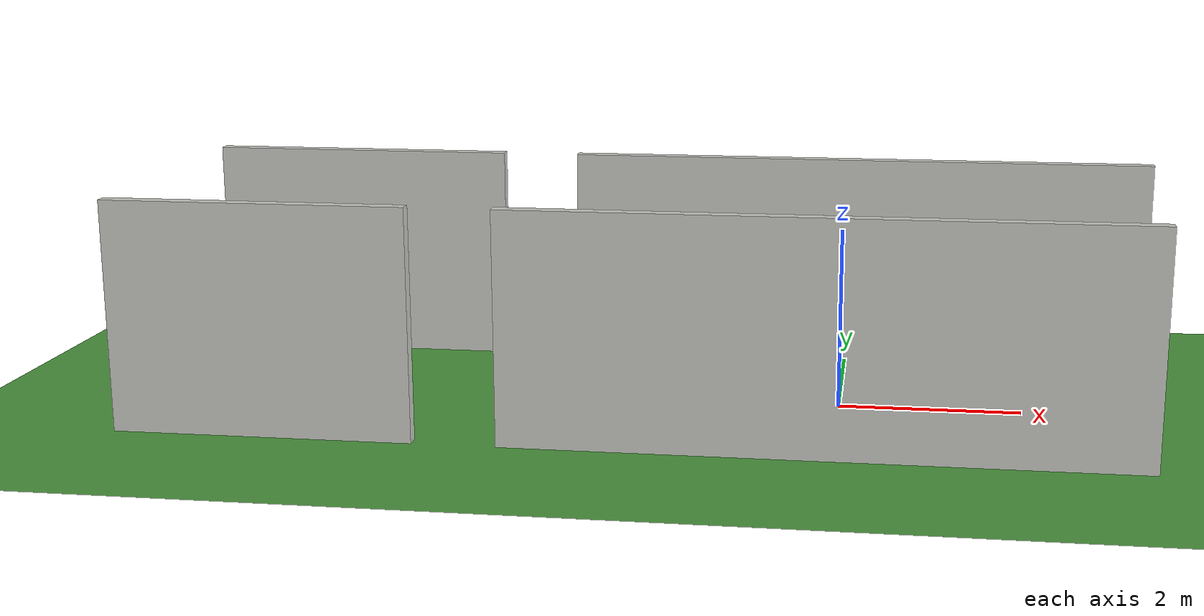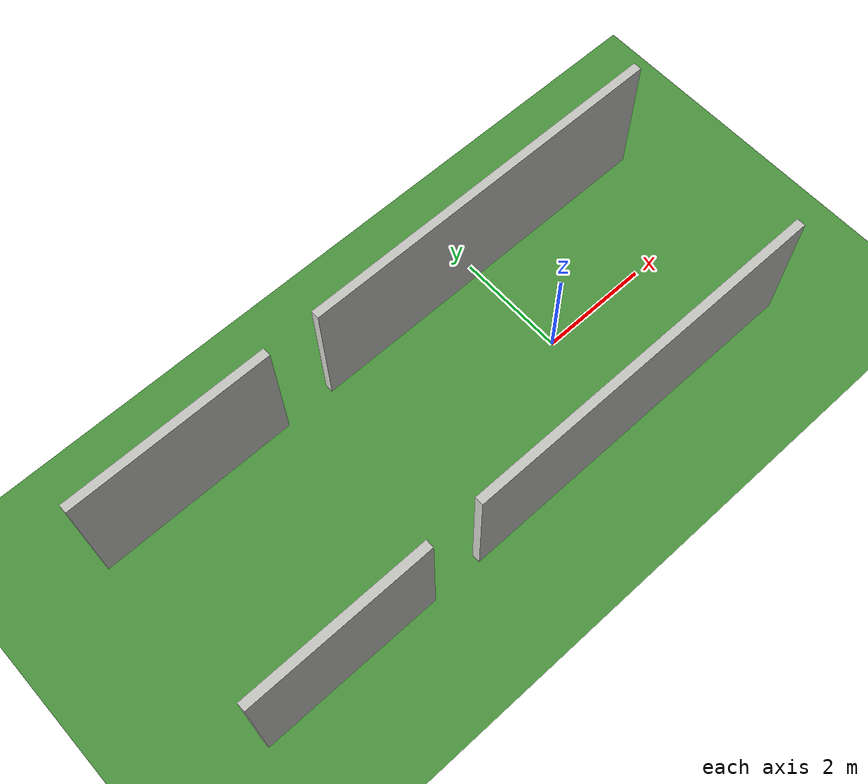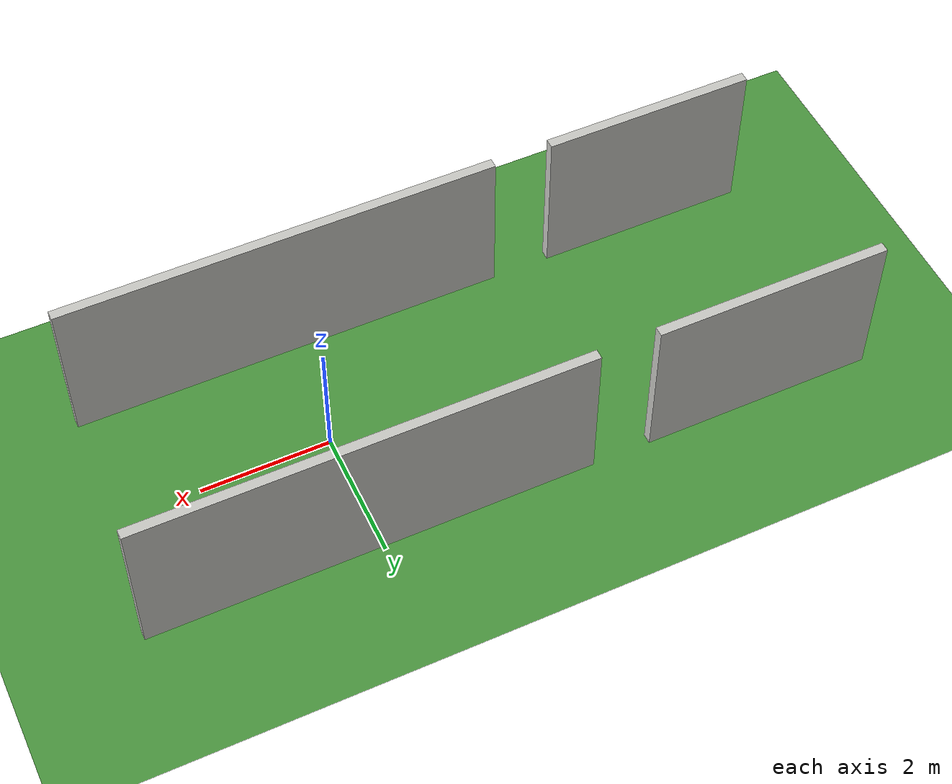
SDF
<sdf version="1.7">
 <world name="default">
  <gravity>0 0 -9.8</gravity>
  <magnetic_field>6e-06 2.3e-05 -4.2e-05</magnetic_field>
  <atmosphere type="adiabatic"/>
  <physics type="ode">
   <max_step_size>0.001</max_step_size>
   <real_time_factor>1</real_time_factor>
   <real_time_update_rate>1000</real_time_update_rate>
  </physics>
  <scene><ambient>0.4 0.4 0.4 1</ambient><background>0.7 0.7 0.7 1</background><shadows>1</shadows></scene>
  <spherical_coordinates>
   <surface_model>EARTH_WGS84</surface_model>
   <latitude_deg>0</latitude_deg>
   <longitude_deg>0</longitude_deg>
   <elevation>0</elevation>
   <heading_deg>0</heading_deg>
  </spherical_coordinates>
  <model name="ground_plane">
   <static>true</static>
   <link name="link">
    <collision name="collision">
     <geometry><plane><normal>0 0 1</normal><size>100 100</size></plane></geometry>
     <surface><friction><ode><mu>100</mu><mu2>50</mu2></ode></friction></surface>
    </collision>
    <visual name="visual">
     <geometry><plane><normal>0 0 1</normal><size>100 100</size></plane></geometry>
     <material>
      <script><uri>file://media/materials/scripts/gazebo.material</uri><name>Gazebo/Grass</name></script>
     </material>
    </visual>
   </link>
  </model>
  <model name="hallway">
   <link name="Wall_2">
    <pose>0 1.87585 0 0 0 0</pose>
    <visual name="Wall_2_Visual_0">
     <pose>-5.95887 0 1.25 0 0 0</pose>
     <geometry><box><size>3.58227 0.15 2.5</size></box></geometry>
     <material>
      <script><uri>file://media/materials/scripts/gazebo.material</uri><name>Gazebo/CeilingTiled</name></script>
      <ambient>1 0.764706 0.305882 1</ambient>
     </material>
    </visual>
    <collision name="Wall_2_Collision_0">
     <geometry><box><size>3.58227 0.15 2.5</size></box></geometry>
     <pose>-5.95887 0 1.25 0 0 0</pose>
    </collision>
    <visual name="Wall_2_Visual_1">
     <pose>0.130432 0 1.25 0 0 0</pose>
     <geometry><box><size>6.79632 0.15 2.5</size></box></geometry>
     <material>
      <script><uri>file://media/materials/scripts/gazebo.material</uri><name>Gazebo/CeilingTiled</name></script>
      <ambient>1 0.764706 0.305882 1</ambient>
     </material>
    </visual>
    <collision name="Wall_2_Collision_1">
     <geometry><box><size>6.79632 0.15 2.5</size></box></geometry>
     <pose>0.130432 0 1.25 0 0 0</pose>
    </collision>
   </link>
   <link name="Wall_7">
    <pose>0 -1.87585 0 0 0 0</pose>
    <visual name="Wall_7_Visual_0">
     <pose>-5.99773 0 1.25 0 0 0</pose>
     <geometry><box><size>3.25454 0.15 2.5</size></box></geometry>
     <material>
      <script><uri>file://media/materials/scripts/gazebo.material</uri><name>Gazebo/CeilingTiled</name></script>
      <ambient>1 0.764706 0.305882 1</ambient>
     </material>
    </visual>
    <collision name="Wall_7_Collision_0">
     <geometry><box><size>3.25454 0.15 2.5</size></box></geometry>
     <pose>-5.99773 0 1.25 0 0 0</pose>
    </collision>
    <visual name="Wall_7_Visual_1">
     <pose>-0.125502 0 1.25 0 0 0</pose>
     <geometry><box><size>6.68992 0.15 2.5</size></box></geometry>
     <material>
      <script><uri>file://media/materials/scripts/gazebo.material</uri><name>Gazebo/CeilingTiled</name></script>
      <ambient>1 0.764706 0.305882 1</ambient>
     </material>
    </visual>
    <collision name="Wall_7_Collision_1">
     <geometry><box><size>6.68992 0.15 2.5</size></box></geometry>
     <pose>-0.125502 0 1.25 0 0 0</pose>
    </collision>
   </link>
   <static>1</static>
  </model>
 </world>
</sdf>
